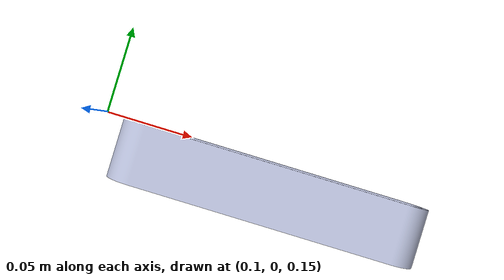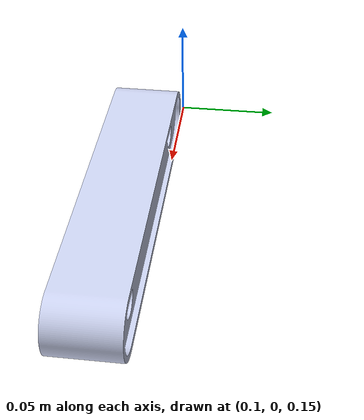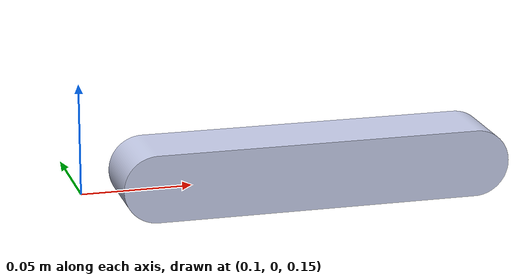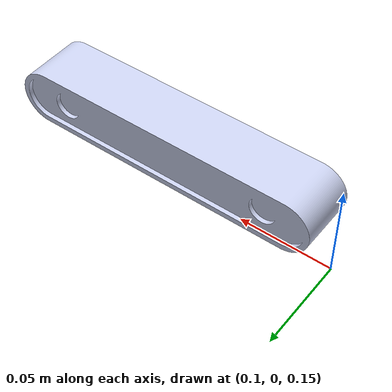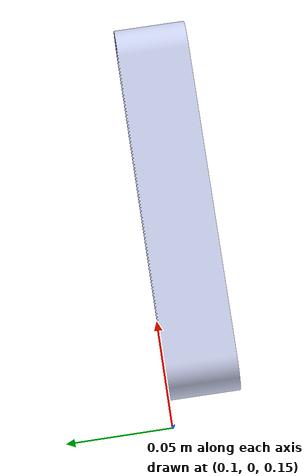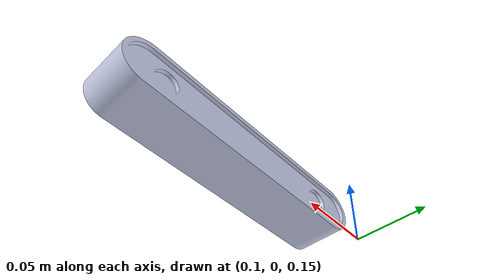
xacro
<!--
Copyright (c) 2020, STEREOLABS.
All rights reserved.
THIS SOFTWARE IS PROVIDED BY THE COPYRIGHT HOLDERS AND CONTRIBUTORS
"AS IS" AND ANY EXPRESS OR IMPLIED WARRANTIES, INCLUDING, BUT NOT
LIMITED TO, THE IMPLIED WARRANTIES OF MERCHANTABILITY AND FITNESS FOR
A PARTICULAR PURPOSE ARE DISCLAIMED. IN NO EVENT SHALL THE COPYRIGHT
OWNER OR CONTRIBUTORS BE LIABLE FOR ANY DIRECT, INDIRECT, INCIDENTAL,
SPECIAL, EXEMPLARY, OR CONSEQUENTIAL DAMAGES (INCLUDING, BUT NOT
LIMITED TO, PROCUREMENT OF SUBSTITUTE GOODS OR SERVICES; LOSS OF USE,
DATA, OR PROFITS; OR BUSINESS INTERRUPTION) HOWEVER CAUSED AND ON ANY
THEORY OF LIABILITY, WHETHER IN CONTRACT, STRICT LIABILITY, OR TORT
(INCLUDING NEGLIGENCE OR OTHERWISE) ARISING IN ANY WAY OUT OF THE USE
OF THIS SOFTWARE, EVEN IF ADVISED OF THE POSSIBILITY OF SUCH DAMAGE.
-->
<?xml version="1.0"?>

<robot name="stereolabs_camera" xmlns:xacro="http://ros.org/wiki/xacro">

<!-- Includes -->
    <xacro:include filename="$(find zed_wrapper)/urdf/include/materials.urdf.xacro" />

    <!-- Arguments -->

    <xacro:arg name="camera_name"   default="zed" />
    <xacro:arg name="camera_model"  default="zed" />
    <xacro:arg name="base_frame"    default="base_link" />
    <xacro:arg name="cam_pos_x"     default="0.2" />
    <xacro:arg name="cam_pos_y"     default="0.0" />
    <xacro:arg name="cam_pos_z"     default="0.16" />
    <xacro:arg name="cam_roll"      default="0.0" />
    <xacro:arg name="cam_pitch"     default="0.0" />
    <xacro:arg name="cam_yaw"       default="0.0" />

    <!-- Properties -->
    <xacro:property name="M_PI"     value="3.1415926535897931" />
    <xacro:property name="model"    value="$(arg camera_model)" />

    <xacro:if value="${model == 'zed'}">
        <xacro:property name="baseline" value="0.12" />
    </xacro:if>
    <xacro:if value="${model == 'zedm'}">
        <xacro:property name="baseline" value="0.06" />
    </xacro:if>
    <xacro:if value="${model == 'zed2'}">
        <xacro:property name="baseline" value="0.12" />
    </xacro:if>

<!-- base_link -->
    <link name="$(arg base_frame)" />

<!-- Camera Center -->
    <joint name="$(arg camera_name)_camera_center_joint" type="fixed">
        <parent link="$(arg base_frame)"/>
        <child link="$(arg camera_name)_camera_center"/>
        <origin xyz="$(arg cam_pos_x) $(arg cam_pos_y) $(arg cam_pos_z)" rpy="$(arg cam_roll) $(arg cam_pitch) $(arg cam_yaw)" />
    </joint>

    <link name="$(arg camera_name)_camera_center">
        <visual>
            <origin xyz="0 0 0" rpy="0 0 0"/>
            <geometry>
                <mesh filename="package://zed_wrapper/urdf/models/${model}.stl" />
            </geometry>
            <material name="${model}_mat" />
        </visual>
    </link>

<!-- Left Camera -->
    <joint name="$(arg camera_name)_left_camera_joint" type="fixed">
        <parent link="$(arg camera_name)_camera_center"/>
        <child link="$(arg camera_name)_left_camera_frame"/>
        <origin xyz="0 ${baseline/2} 0" rpy="0 0 0" />
    </joint>

    <link name="$(arg camera_name)_left_camera_frame" />

    <joint name="$(arg camera_name)_left_camera_optical_joint" type="fixed">
        <origin xyz="0 0 0" rpy="-${M_PI/2} 0.0 -${M_PI/2}"/>
        <parent link="$(arg camera_name)_left_camera_frame"/>
        <child link="$(arg camera_name)_left_camera_optical_frame"/>
    </joint>

    <link name="$(arg camera_name)_left_camera_optical_frame"/>

<!-- Right Camera -->
    <joint name="$(arg camera_name)_right_camera_joint" type="fixed">
        <parent link="$(arg camera_name)_camera_center"/>
        <child link="$(arg camera_name)_right_camera_frame"/>
        <origin xyz="0 -${baseline/2} 0" rpy="0 0 0" />
    </joint>

    <link name="$(arg camera_name)_right_camera_frame" />

    <joint name="$(arg camera_name)_right_camera_optical_joint" type="fixed">
        <origin xyz="0 0 0" rpy="-${M_PI/2} 0.0 -${M_PI/2}"/>
        <parent link="$(arg camera_name)_right_camera_frame"/>
        <child link="$(arg camera_name)_right_camera_optical_frame"/>
    </joint>

    <link name="$(arg camera_name)_right_camera_optical_frame"/>

<!-- ZED2 Sensors -->
    <xacro:if value="${model == 'zed2'}">
        <joint name="$(arg camera_name)_mag_joint" type="fixed">
            <parent link="$(arg camera_name)_camera_center"/>
            <child link="$(arg camera_name)_mag_link"/>
            <origin xyz="0 0 0" rpy="0 0 0" />
        </joint>

        <link name="$(arg camera_name)_mag_link" />

        <joint name="$(arg camera_name)_baro_joint" type="fixed">
            <parent link="$(arg camera_name)_camera_center"/>
            <child link="$(arg camera_name)_baro_link"/>
            <origin xyz="0 0 0" rpy="0 0 0" />
        </joint>

        <link name="$(arg camera_name)_baro_link" />

        <joint name="$(arg camera_name)_temp_left_joint" type="fixed">
            <parent link="$(arg camera_name)_left_camera_frame"/>
            <child link="$(arg camera_name)_temp_left_link"/>
            <origin xyz="0 0 0" rpy="0 0 0" />
        </joint>

        <link name="$(arg camera_name)_temp_left_link" />

        <joint name="$(arg camera_name)_temp_right_joint" type="fixed">
            <parent link="$(arg camera_name)_right_camera_frame"/>
            <child link="$(arg camera_name)_temp_right_link"/>
            <origin xyz="0 0 0" rpy="0 0 0" />
        </joint>

        <link name="$(arg camera_name)_temp_right_link" />
    </xacro:if>
</robot>
